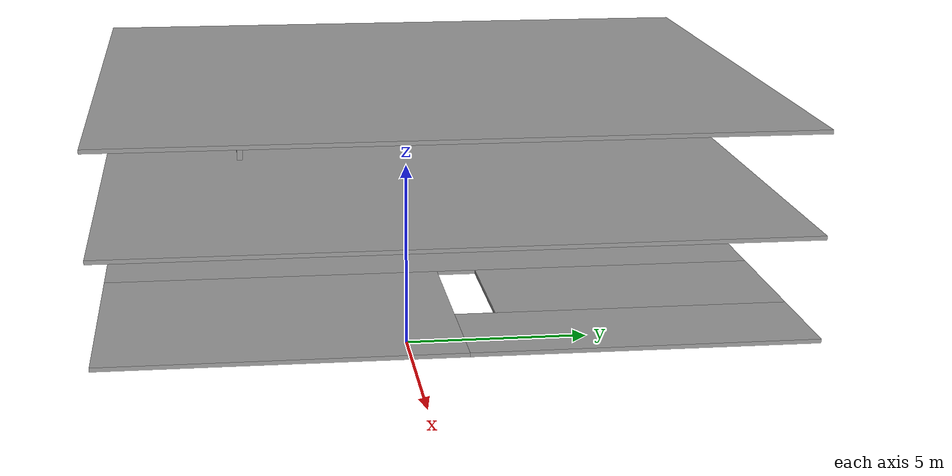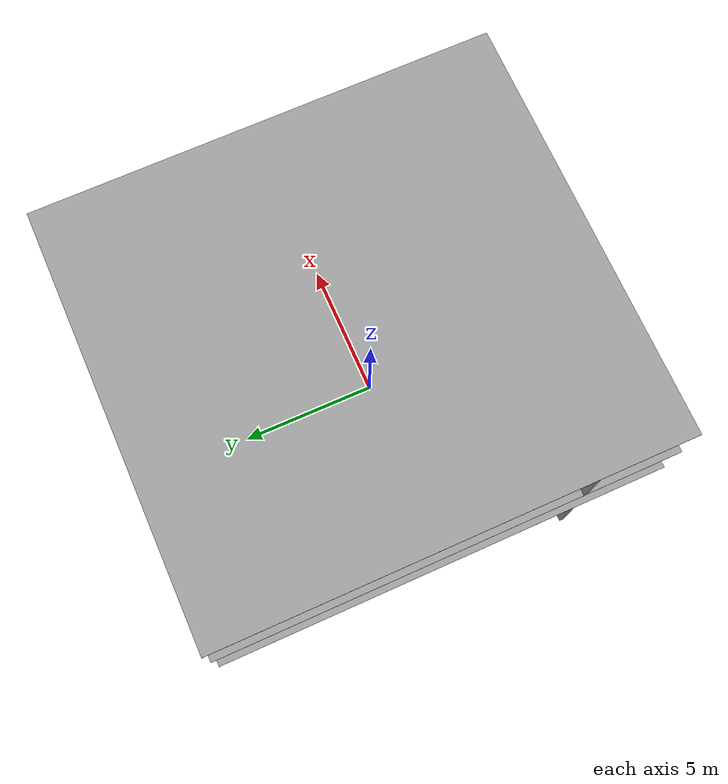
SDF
<sdf version="1.7">
 <model name="Drone_House">
  <pose>0.336432 0.443828 0 0 -0 0</pose>
  <link name="Floor_0">
   <pose>-1e-06 0 2.5 0 -0 0</pose>
   <visual name="Floor_0_Visual_0">
    <pose>-3.13292 0 0.05 0 -0 0</pose>
    <geometry><box><size>9.33629 16.85 0.1</size></box></geometry>
    <material>
     <script><uri>file://media/materials/scripts/gazebo.material</uri><name>Gazebo/Grey</name></script>
     <ambient>1 1 1 1</ambient>
    </material>
    <meta><layer>1</layer></meta>
   </visual>
   <collision name="Floor_0_Collision_0">
    <geometry><box><size>9.33629 16.85 0.1</size></box></geometry>
    <pose>-3.13292 0 0.05 0 -0 0</pose>
   </collision>
   <visual name="Floor_0_Visual_1">
    <pose>4.66814 -4.13229 0.05 0 -0 0</pose>
    <geometry><box><size>6.26584 8.58542 0.1</size></box></geometry>
    <material>
     <script><uri>file://media/materials/scripts/gazebo.material</uri><name>Gazebo/Grey</name></script>
     <ambient>1 1 1 1</ambient>
    </material>
    <meta><layer>1</layer></meta>
   </visual>
   <collision name="Floor_0_Collision_1">
    <geometry><box><size>6.26584 8.58542 0.1</size></box></geometry>
    <pose>4.66814 -4.13229 0.05 0 -0 0</pose>
   </collision>
   <visual name="Floor_0_Visual_2">
    <pose>6.41814 4.29271 0.05 0 -0 0</pose>
    <geometry><box><size>2.76584 8.26458 0.1</size></box></geometry>
    <material>
     <script><uri>file://media/materials/scripts/gazebo.material</uri><name>Gazebo/Grey</name></script>
     <ambient>1 1 1 1</ambient>
    </material>
    <meta><layer>1</layer></meta>
   </visual>
   <collision name="Floor_0_Collision_2">
    <geometry><box><size>2.76584 8.26458 0.1</size></box></geometry>
    <pose>6.41814 4.29271 0.05 0 -0 0</pose>
   </collision>
   <visual name="Floor_0_Visual_3">
    <pose>3.28522 4.79271 0.05 0 -0 0</pose>
    <geometry><box><size>3.5 7.26458 0.1</size></box></geometry>
    <material>
     <script><uri>file://media/materials/scripts/gazebo.material</uri><name>Gazebo/Grey</name></script>
     <ambient>1 1 1 1</ambient>
    </material>
    <meta><layer>1</layer></meta>
   </visual>
   <collision name="Floor_0_Collision_3">
    <geometry><box><size>3.5 7.26458 0.1</size></box></geometry>
    <pose>3.28522 4.79271 0.05 0 -0 0</pose>
   </collision>
  </link>
  <link name="Floor_5">
   <collision name="Floor_5_Collision">
    <geometry><box><size>15.6021 16.85 0.1</size></box></geometry>
    <pose>0 0 0.05 0 -0 0</pose>
   </collision>
   <visual name="Floor_5_Visual">
    <pose>0 0 0.05 0 -0 0</pose>
    <geometry><box><size>15.6021 16.85 0.1</size></box></geometry>
    <material>
     <script><uri>file://media/materials/scripts/gazebo.material</uri><name>Gazebo/Grey</name></script>
     <ambient>1 1 1 1</ambient>
    </material>
    <meta><layer>2</layer></meta>
   </visual>
   <pose>-1e-06 0 5 0 -0 0</pose>
  </link>
  <link name="Floor_6">
   <collision name="Floor_6_Collision">
    <geometry><box><size>15.6021 16.85 0.1</size></box></geometry>
    <pose>0 0 0.05 0 -0 0</pose>
   </collision>
   <visual name="Floor_6_Visual">
    <pose>0 0 0.05 0 -0 0</pose>
    <geometry><box><size>15.6021 16.85 0.1</size></box></geometry>
    <material>
     <script><uri>file://media/materials/scripts/gazebo.material</uri><name>Gazebo/Grey</name></script>
     <ambient>1 1 1 1</ambient>
    </material>
    <meta><layer>3</layer></meta>
   </visual>
   <pose>-1e-06 0 7.5 0 -0 0</pose>
  </link>
  <link name="Wall_5">
   <pose>-4.42394 -4.85 0 0 -0 0</pose>
   <visual name="Wall_5_Visual_0">
    <pose>-1.88995 0 1.25 0 -0 0</pose>
    <geometry><box><size>2.9701 0.15 2.5</size></box></geometry>
    <material>
     <script><uri>file://media/materials/scripts/gazebo.material</uri><name>Gazebo/Grey</name></script>
     <ambient>1 1 1 1</ambient>
    </material>
    <meta><layer>0</layer></meta>
   </visual>
   <collision name="Wall_5_Collision_0">
    <geometry><box><size>2.9701 0.15 2.5</size></box></geometry>
    <pose>-1.88995 0 1.25 0 -0 0</pose>
   </collision>
   <visual name="Wall_5_Visual_1">
    <pose>1.48505 0 0.25 0 -0 0</pose>
    <geometry><box><size>3.7799 0.15 0.5</size></box></geometry>
    <material>
     <script><uri>file://media/materials/scripts/gazebo.material</uri><name>Gazebo/Grey</name></script>
     <ambient>1 1 1 1</ambient>
    </material>
    <meta><layer>0</layer></meta>
   </visual>
   <collision name="Wall_5_Collision_1">
    <geometry><box><size>3.7799 0.15 0.5</size></box></geometry>
    <pose>1.48505 0 0.25 0 -0 0</pose>
   </collision>
   <visual name="Wall_5_Visual_2">
    <pose>1.88505 0 1.5 0 -0 0</pose>
    <geometry><box><size>2.9799 0.15 2</size></box></geometry>
    <material>
     <script><uri>file://media/materials/scripts/gazebo.material</uri><name>Gazebo/Grey</name></script>
     <ambient>1 1 1 1</ambient>
    </material>
    <meta><layer>0</layer></meta>
   </visual>
   <collision name="Wall_5_Collision_2">
    <geometry><box><size>2.9799 0.15 2</size></box></geometry>
    <pose>1.88505 0 1.5 0 -0 0</pose>
   </collision>
   <visual name="Wall_5_Visual_3">
    <pose>-0.004899 0 1.9 0 -0 0</pose>
    <geometry><box><size>0.8 0.15 1.2</size></box></geometry>
    <material>
     <script><uri>file://media/materials/scripts/gazebo.material</uri><name>Gazebo/Grey</name></script>
     <ambient>1 1 1 1</ambient>
    </material>
    <meta><layer>0</layer></meta>
   </visual>
   <collision name="Wall_5_Collision_3">
    <geometry><box><size>0.8 0.15 1.2</size></box></geometry>
    <pose>-0.004899 0 1.9 0 -0 0</pose>
   </collision>
  </link>
  <link name="Wall_85">
   <collision name="Wall_85_Collision">
    <geometry><box><size>6.75 0.15 2.5</size></box></geometry>
    <pose>0 0 1.25 0 -0 0</pose>
   </collision>
   <visual name="Wall_85_Visual">
    <pose>0 0 1.25 0 -0 0</pose>
    <geometry><box><size>6.75 0.15 2.5</size></box></geometry>
    <material>
     <script><uri>file://media/materials/scripts/gazebo.material</uri><name>Gazebo/Grey</name></script>
     <ambient>1 1 1 1</ambient>
    </material>
    <meta><layer>2</layer></meta>
   </visual>
   <pose>-4.42394 -4.85 5 0 -0 0</pose>
  </link>
  <static>1</static>
 </model>
</sdf>
